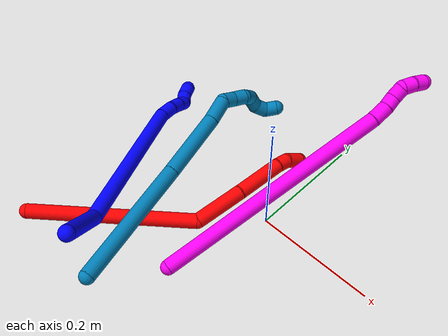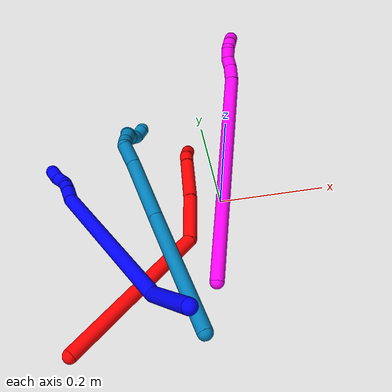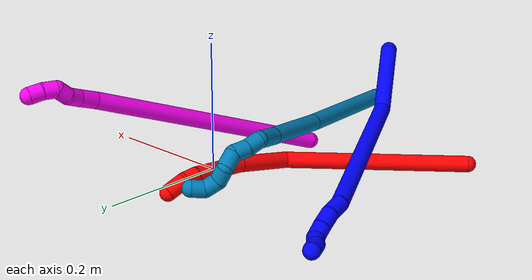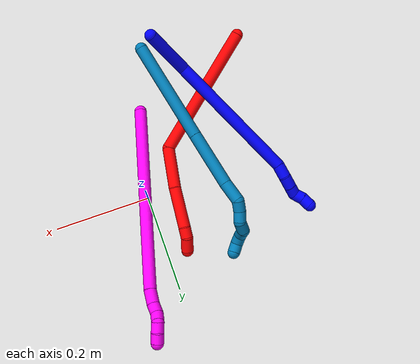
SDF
<sdf version="1.7">
 <world name="default">
  <model name="1">
   <static>0</static>
   <link name="1">
    <collision name="collision-cylinder-e_1_1_4">
     <pose>0.001584 -0.016772 -0.051891 2.82898 0.029044 0.183791</pose>
     <geometry><cylinder><radius>0.0125</radius><length>0.109115</length></cylinder></geometry>
     <surface>
      <friction><ode><mu>1.16</mu><mu2>1.16</mu2><slip1>0</slip1><slip2>0</slip2></ode></friction>
      <contact><ode><kp>1e+06</kp><kd>1</kd><max_vel>0</max_vel><min_depth>0.001</min_depth></ode></contact>
     </surface>
    </collision>
    <visual name="visual-cylinder-e_1_1_4">
     <pose>0.001584 -0.016772 -0.051891 2.82898 0.029044 0.183791</pose>
     <geometry><cylinder><radius>0.0125</radius><length>0.109115</length></cylinder></geometry>
     <material><ambient>0 0 1 1</ambient></material>
    </visual>
    <collision name="collision-cylinder-e_2_4_5">
     <pose>-0.013716 -0.001161 -0.237657 -2.90426 -0.12198 0.946687</pose>
     <geometry><cylinder><radius>0.0125</radius><length>0.277533</length></cylinder></geometry>
     <surface>
      <friction><ode><mu>1.16</mu><mu2>1.16</mu2><slip1>0</slip1><slip2>0</slip2></ode></friction>
      <contact><ode><kp>1e+06</kp><kd>1</kd><max_vel>0</max_vel><min_depth>0.001</min_depth></ode></contact>
     </surface>
    </collision>
    <visual name="visual-cylinder-e_2_4_5">
     <pose>-0.013716 -0.001161 -0.237657 -2.90426 -0.12198 0.946687</pose>
     <geometry><cylinder><radius>0.0125</radius><length>0.277533</length></cylinder></geometry>
     <material><ambient>0 0 1 1</ambient></material>
    </visual>
    <collision name="collision-cylinder-e_3_5_6">
     <pose>-0.028817 0.035622 -0.38454 -2.81548 0.129185 -0.749207</pose>
     <geometry><cylinder><radius>0.0125</radius><length>0.027695</length></cylinder></geometry>
     <surface>
      <friction><ode><mu>1.16</mu><mu2>1.16</mu2><slip1>0</slip1><slip2>0</slip2></ode></friction>
      <contact><ode><kp>1e+06</kp><kd>1</kd><max_vel>0</max_vel><min_depth>0.001</min_depth></ode></contact>
     </surface>
    </collision>
    <visual name="visual-cylinder-e_3_5_6">
     <pose>-0.028817 0.035622 -0.38454 -2.81548 0.129185 -0.749207</pose>
     <geometry><cylinder><radius>0.0125</radius><length>0.027695</length></cylinder></geometry>
     <material><ambient>0 0 1 1</ambient></material>
    </visual>
    <collision name="collision-cylinder-e_4_6_7">
     <pose>-0.024769 0.041117 -0.409801 -3.05242 0.181993 -2.23205</pose>
     <geometry><cylinder><radius>0.0125</radius><length>0.025016</length></cylinder></geometry>
     <surface>
      <friction><ode><mu>1.16</mu><mu2>1.16</mu2><slip1>0</slip1><slip2>0</slip2></ode></friction>
      <contact><ode><kp>1e+06</kp><kd>1</kd><max_vel>0</max_vel><min_depth>0.001</min_depth></ode></contact>
     </surface>
    </collision>
    <visual name="visual-cylinder-e_4_6_7">
     <pose>-0.024769 0.041117 -0.409801 -3.05242 0.181993 -2.23205</pose>
     <geometry><cylinder><radius>0.0125</radius><length>0.025016</length></cylinder></geometry>
     <material><ambient>0 0 1 1</ambient></material>
    </visual>
    <collision name="collision-cylinder-e_5_7_8">
     <pose>-0.020491 0.042107 -0.431983 3.13104 0.200114 3.03654</pose>
     <geometry><cylinder><radius>0.0125</radius><length>0.020264</length></cylinder></geometry>
     <surface>
      <friction><ode><mu>1.16</mu><mu2>1.16</mu2><slip1>0</slip1><slip2>0</slip2></ode></friction>
      <contact><ode><kp>1e+06</kp><kd>1</kd><max_vel>0</max_vel><min_depth>0.001</min_depth></ode></contact>
     </surface>
    </collision>
    <visual name="visual-cylinder-e_5_7_8">
     <pose>-0.020491 0.042107 -0.431983 3.13104 0.200114 3.03654</pose>
     <geometry><cylinder><radius>0.0125</radius><length>0.020264</length></cylinder></geometry>
     <material><ambient>0 0 1 1</ambient></material>
    </visual>
    <collision name="collision-cylinder-e_6_8_9">
     <pose>-0.022906 0.044431 -0.450637 -2.87008 -0.45483 2.07513</pose>
     <geometry><cylinder><radius>0.0125</radius><length>0.020163</length></cylinder></geometry>
     <surface>
      <friction><ode><mu>1.16</mu><mu2>1.16</mu2><slip1>0</slip1><slip2>0</slip2></ode></friction>
      <contact><ode><kp>1e+06</kp><kd>1</kd><max_vel>0</max_vel><min_depth>0.001</min_depth></ode></contact>
     </surface>
    </collision>
    <visual name="visual-cylinder-e_6_8_9">
     <pose>-0.022906 0.044431 -0.450637 -2.87008 -0.45483 2.07513</pose>
     <geometry><cylinder><radius>0.0125</radius><length>0.020163</length></cylinder></geometry>
     <material><ambient>0 0 1 1</ambient></material>
    </visual>
    <collision name="collision-cylinder-e_7_9_2">
     <pose>-0.029291 0.051039 -0.468354 -2.70658 -0.194723 0.832271</pose>
     <geometry><cylinder><radius>0.0125</radius><length>0.020214</length></cylinder></geometry>
     <surface>
      <friction><ode><mu>1.16</mu><mu2>1.16</mu2><slip1>0</slip1><slip2>0</slip2></ode></friction>
      <contact><ode><kp>1e+06</kp><kd>1</kd><max_vel>0</max_vel><min_depth>0.001</min_depth></ode></contact>
     </surface>
    </collision>
    <visual name="visual-cylinder-e_7_9_2">
     <pose>-0.029291 0.051039 -0.468354 -2.70658 -0.194723 0.832271</pose>
     <geometry><cylinder><radius>0.0125</radius><length>0.020214</length></cylinder></geometry>
     <material><ambient>0 0 1 1</ambient></material>
    </visual>
    <collision name="collision-sphere-2">
     <pose>-0.031247 0.055218 -0.477347 0 -0 0</pose>
     <geometry><sphere><radius>0.0125</radius></sphere></geometry>
     <surface>
      <friction><ode><mu>1.16</mu><mu2>1.16</mu2><slip1>0</slip1><slip2>0</slip2></ode></friction>
      <contact><ode><kp>1e+06</kp><kd>1</kd><max_vel>0</max_vel><min_depth>0.001</min_depth></ode></contact>
     </surface>
    </collision>
    <visual name="visual-sphere-2">
     <pose>-0.031247 0.055218 -0.477347 0 -0 0</pose>
     <geometry><sphere><radius>0.0125</radius></sphere></geometry>
     <material><ambient>0 0 1 1</ambient></material>
    </visual>
    <collision name="collision-sphere-9">
     <pose>-0.027335 0.04686 -0.459362 0 -0 0</pose>
     <geometry><sphere><radius>0.0125</radius></sphere></geometry>
     <surface>
      <friction><ode><mu>1.16</mu><mu2>1.16</mu2><slip1>0</slip1><slip2>0</slip2></ode></friction>
      <contact><ode><kp>1e+06</kp><kd>1</kd><max_vel>0</max_vel><min_depth>0.001</min_depth></ode></contact>
     </surface>
    </collision>
    <visual name="visual-sphere-9">
     <pose>-0.027335 0.04686 -0.459362 0 -0 0</pose>
     <geometry><sphere><radius>0.0125</radius></sphere></geometry>
     <material><ambient>0 0 1 1</ambient></material>
    </visual>
    <collision name="collision-sphere-4">
     <pose>0.003169 -0.033544 -0.103783 0 -0 0</pose>
     <geometry><sphere><radius>0.0125</radius></sphere></geometry>
     <surface>
      <friction><ode><mu>1.16</mu><mu2>1.16</mu2><slip1>0</slip1><slip2>0</slip2></ode></friction>
      <contact><ode><kp>1e+06</kp><kd>1</kd><max_vel>0</max_vel><min_depth>0.001</min_depth></ode></contact>
     </surface>
    </collision>
    <visual name="visual-sphere-4">
     <pose>0.003169 -0.033544 -0.103783 0 -0 0</pose>
     <geometry><sphere><radius>0.0125</radius></sphere></geometry>
     <material><ambient>0 0 1 1</ambient></material>
    </visual>
    <collision name="collision-sphere-1">
     <geometry><sphere><radius>0.0125</radius></sphere></geometry>
     <surface>
      <friction><ode><mu>1.16</mu><mu2>1.16</mu2><slip1>0</slip1><slip2>0</slip2></ode></friction>
      <contact><ode><kp>1e+06</kp><kd>1</kd><max_vel>0</max_vel><min_depth>0.001</min_depth></ode></contact>
     </surface>
    </collision>
    <visual name="visual-sphere-1">
     <geometry><sphere><radius>0.0125</radius></sphere></geometry>
     <material><ambient>0 0 1 1</ambient></material>
    </visual>
    <collision name="collision-sphere-8">
     <pose>-0.018477 0.042002 -0.441912 0 -0 0</pose>
     <geometry><sphere><radius>0.0125</radius></sphere></geometry>
     <surface>
      <friction><ode><mu>1.16</mu><mu2>1.16</mu2><slip1>0</slip1><slip2>0</slip2></ode></friction>
      <contact><ode><kp>1e+06</kp><kd>1</kd><max_vel>0</max_vel><min_depth>0.001</min_depth></ode></contact>
     </surface>
    </collision>
    <visual name="visual-sphere-8">
     <pose>-0.018477 0.042002 -0.441912 0 -0 0</pose>
     <geometry><sphere><radius>0.0125</radius></sphere></geometry>
     <material><ambient>0 0 1 1</ambient></material>
    </visual>
    <collision name="collision-sphere-5">
     <pose>-0.030601 0.031223 -0.371532 0 -0 0</pose>
     <geometry><sphere><radius>0.0125</radius></sphere></geometry>
     <surface>
      <friction><ode><mu>1.16</mu><mu2>1.16</mu2><slip1>0</slip1><slip2>0</slip2></ode></friction>
      <contact><ode><kp>1e+06</kp><kd>1</kd><max_vel>0</max_vel><min_depth>0.001</min_depth></ode></contact>
     </surface>
    </collision>
    <visual name="visual-sphere-5">
     <pose>-0.030601 0.031223 -0.371532 0 -0 0</pose>
     <geometry><sphere><radius>0.0125</radius></sphere></geometry>
     <material><ambient>0 0 1 1</ambient></material>
    </visual>
    <collision name="collision-sphere-6">
     <pose>-0.027033 0.040021 -0.397548 0 -0 0</pose>
     <geometry><sphere><radius>0.0125</radius></sphere></geometry>
     <surface>
      <friction><ode><mu>1.16</mu><mu2>1.16</mu2><slip1>0</slip1><slip2>0</slip2></ode></friction>
      <contact><ode><kp>1e+06</kp><kd>1</kd><max_vel>0</max_vel><min_depth>0.001</min_depth></ode></contact>
     </surface>
    </collision>
    <visual name="visual-sphere-6">
     <pose>-0.027033 0.040021 -0.397548 0 -0 0</pose>
     <geometry><sphere><radius>0.0125</radius></sphere></geometry>
     <material><ambient>0 0 1 1</ambient></material>
    </visual>
    <collision name="collision-sphere-7">
     <pose>-0.022505 0.042212 -0.422054 0 -0 0</pose>
     <geometry><sphere><radius>0.0125</radius></sphere></geometry>
     <surface>
      <friction><ode><mu>1.16</mu><mu2>1.16</mu2><slip1>0</slip1><slip2>0</slip2></ode></friction>
      <contact><ode><kp>1e+06</kp><kd>1</kd><max_vel>0</max_vel><min_depth>0.001</min_depth></ode></contact>
     </surface>
    </collision>
    <visual name="visual-sphere-7">
     <pose>-0.022505 0.042212 -0.422054 0 -0 0</pose>
     <geometry><sphere><radius>0.0125</radius></sphere></geometry>
     <material><ambient>0 0 1 1</ambient></material>
    </visual>
    <inertial>
     <pose>-0.013041 0.005288 -0.239657 0 -0 0</pose>
     <mass>0.5</mass>
     <inertia>
      <ixx>0.00261</ixx>
      <ixy>0</ixy>
      <ixz>0</ixz>
      <iyy>0.000387</iyy>
      <iyz>0</iyz>
      <izz>-0.000208</izz>
     </inertia>
    </inertial>
   </link>
   <pose>-0.108408 -0.288502 0.152193 1.10258 0.363868 0.263491</pose>
  </model>
  <model name="2">
   <static>0</static>
   <link name="2">
    <collision name="collision-cylinder-e_1_1_4">
     <pose>0.007608 0.120166 -0.070526 -2.10153 0.054549 -0.095216</pose>
     <geometry><cylinder><radius>0.0125</radius><length>0.279081</length></cylinder></geometry>
     <surface>
      <friction><ode><mu>1.16</mu><mu2>1.16</mu2><slip1>0</slip1><slip2>0</slip2></ode></friction>
      <contact><ode><kp>1e+06</kp><kd>1</kd><max_vel>0</max_vel><min_depth>0.001</min_depth></ode></contact>
     </surface>
    </collision>
    <visual name="visual-cylinder-e_1_1_4">
     <pose>0.007608 0.120166 -0.070526 -2.10153 0.054549 -0.095216</pose>
     <geometry><cylinder><radius>0.0125</radius><length>0.279081</length></cylinder></geometry>
     <material><ambient>1 0 0 1</ambient></material>
    </visual>
    <collision name="collision-cylinder-e_2_4_5">
     <pose>0.039938 0.259195 -0.170825 -2.57684 0.611681 -1.65532</pose>
     <geometry><cylinder><radius>0.0125</radius><length>0.086104</length></cylinder></geometry>
     <surface>
      <friction><ode><mu>1.16</mu><mu2>1.16</mu2><slip1>0</slip1><slip2>0</slip2></ode></friction>
      <contact><ode><kp>1e+06</kp><kd>1</kd><max_vel>0</max_vel><min_depth>0.001</min_depth></ode></contact>
     </surface>
    </collision>
    <visual name="visual-cylinder-e_2_4_5">
     <pose>0.039938 0.259195 -0.170825 -2.57684 0.611681 -1.65532</pose>
     <geometry><cylinder><radius>0.0125</radius><length>0.086104</length></cylinder></geometry>
     <material><ambient>1 0 0 1</ambient></material>
    </visual>
    <collision name="collision-cylinder-e_3_5_6">
     <pose>0.092572 0.295938 -0.22599 -2.52811 0.732134 -1.76052</pose>
     <geometry><cylinder><radius>0.0125</radius><length>0.08351</length></cylinder></geometry>
     <surface>
      <friction><ode><mu>1.16</mu><mu2>1.16</mu2><slip1>0</slip1><slip2>0</slip2></ode></friction>
      <contact><ode><kp>1e+06</kp><kd>1</kd><max_vel>0</max_vel><min_depth>0.001</min_depth></ode></contact>
     </surface>
    </collision>
    <visual name="visual-cylinder-e_3_5_6">
     <pose>0.092572 0.295938 -0.22599 -2.52811 0.732134 -1.76052</pose>
     <geometry><cylinder><radius>0.0125</radius><length>0.08351</length></cylinder></geometry>
     <material><ambient>1 0 0 1</ambient></material>
    </visual>
    <collision name="collision-cylinder-e_4_6_7">
     <pose>0.128458 0.319397 -0.256233 -2.28635 0.823183 -1.52773</pose>
     <geometry><cylinder><radius>0.0125</radius><length>0.021748</length></cylinder></geometry>
     <surface>
      <friction><ode><mu>1.16</mu><mu2>1.16</mu2><slip1>0</slip1><slip2>0</slip2></ode></friction>
      <contact><ode><kp>1e+06</kp><kd>1</kd><max_vel>0</max_vel><min_depth>0.001</min_depth></ode></contact>
     </surface>
    </collision>
    <visual name="visual-cylinder-e_4_6_7">
     <pose>0.128458 0.319397 -0.256233 -2.28635 0.823183 -1.52773</pose>
     <geometry><cylinder><radius>0.0125</radius><length>0.021748</length></cylinder></geometry>
     <material><ambient>1 0 0 1</ambient></material>
    </visual>
    <collision name="collision-cylinder-e_5_7_2">
     <pose>0.146278 0.335784 -0.263241 -1.76793 0.729197 -0.871221</pose>
     <geometry><cylinder><radius>0.0125</radius><length>0.029557</length></cylinder></geometry>
     <surface>
      <friction><ode><mu>1.16</mu><mu2>1.16</mu2><slip1>0</slip1><slip2>0</slip2></ode></friction>
      <contact><ode><kp>1e+06</kp><kd>1</kd><max_vel>0</max_vel><min_depth>0.001</min_depth></ode></contact>
     </surface>
    </collision>
    <visual name="visual-cylinder-e_5_7_2">
     <pose>0.146278 0.335784 -0.263241 -1.76793 0.729197 -0.871221</pose>
     <geometry><cylinder><radius>0.0125</radius><length>0.029557</length></cylinder></geometry>
     <material><ambient>1 0 0 1</ambient></material>
    </visual>
    <collision name="collision-sphere-2">
     <pose>0.156125 0.346591 -0.2654 0 -0 0</pose>
     <geometry><sphere><radius>0.0125</radius></sphere></geometry>
     <surface>
      <friction><ode><mu>1.16</mu><mu2>1.16</mu2><slip1>0</slip1><slip2>0</slip2></ode></friction>
      <contact><ode><kp>1e+06</kp><kd>1</kd><max_vel>0</max_vel><min_depth>0.001</min_depth></ode></contact>
     </surface>
    </collision>
    <visual name="visual-sphere-2">
     <pose>0.156125 0.346591 -0.2654 0 -0 0</pose>
     <geometry><sphere><radius>0.0125</radius></sphere></geometry>
     <material><ambient>1 0 0 1</ambient></material>
    </visual>
    <collision name="collision-sphere-7">
     <pose>0.136432 0.324977 -0.261083 0 -0 0</pose>
     <geometry><sphere><radius>0.0125</radius></sphere></geometry>
     <surface>
      <friction><ode><mu>1.16</mu><mu2>1.16</mu2><slip1>0</slip1><slip2>0</slip2></ode></friction>
      <contact><ode><kp>1e+06</kp><kd>1</kd><max_vel>0</max_vel><min_depth>0.001</min_depth></ode></contact>
     </surface>
    </collision>
    <visual name="visual-sphere-7">
     <pose>0.136432 0.324977 -0.261083 0 -0 0</pose>
     <geometry><sphere><radius>0.0125</radius></sphere></geometry>
     <material><ambient>1 0 0 1</ambient></material>
    </visual>
    <collision name="collision-sphere-6">
     <pose>0.120484 0.313817 -0.251382 0 -0 0</pose>
     <geometry><sphere><radius>0.0125</radius></sphere></geometry>
     <surface>
      <friction><ode><mu>1.16</mu><mu2>1.16</mu2><slip1>0</slip1><slip2>0</slip2></ode></friction>
      <contact><ode><kp>1e+06</kp><kd>1</kd><max_vel>0</max_vel><min_depth>0.001</min_depth></ode></contact>
     </surface>
    </collision>
    <visual name="visual-sphere-6">
     <pose>0.120484 0.313817 -0.251382 0 -0 0</pose>
     <geometry><sphere><radius>0.0125</radius></sphere></geometry>
     <material><ambient>1 0 0 1</ambient></material>
    </visual>
    <collision name="collision-sphere-5">
     <pose>0.064661 0.278059 -0.200598 0 -0 0</pose>
     <geometry><sphere><radius>0.0125</radius></sphere></geometry>
     <surface>
      <friction><ode><mu>1.16</mu><mu2>1.16</mu2><slip1>0</slip1><slip2>0</slip2></ode></friction>
      <contact><ode><kp>1e+06</kp><kd>1</kd><max_vel>0</max_vel><min_depth>0.001</min_depth></ode></contact>
     </surface>
    </collision>
    <visual name="visual-sphere-5">
     <pose>0.064661 0.278059 -0.200598 0 -0 0</pose>
     <geometry><sphere><radius>0.0125</radius></sphere></geometry>
     <material><ambient>1 0 0 1</ambient></material>
    </visual>
    <collision name="collision-sphere-1">
     <geometry><sphere><radius>0.0125</radius></sphere></geometry>
     <surface>
      <friction><ode><mu>1.16</mu><mu2>1.16</mu2><slip1>0</slip1><slip2>0</slip2></ode></friction>
      <contact><ode><kp>1e+06</kp><kd>1</kd><max_vel>0</max_vel><min_depth>0.001</min_depth></ode></contact>
     </surface>
    </collision>
    <visual name="visual-sphere-1">
     <geometry><sphere><radius>0.0125</radius></sphere></geometry>
     <material><ambient>1 0 0 1</ambient></material>
    </visual>
    <collision name="collision-sphere-4">
     <pose>0.015216 0.240331 -0.141051 0 -0 0</pose>
     <geometry><sphere><radius>0.0125</radius></sphere></geometry>
     <surface>
      <friction><ode><mu>1.16</mu><mu2>1.16</mu2><slip1>0</slip1><slip2>0</slip2></ode></friction>
      <contact><ode><kp>1e+06</kp><kd>1</kd><max_vel>0</max_vel><min_depth>0.001</min_depth></ode></contact>
     </surface>
    </collision>
    <visual name="visual-sphere-4">
     <pose>0.015216 0.240331 -0.141051 0 -0 0</pose>
     <geometry><sphere><radius>0.0125</radius></sphere></geometry>
     <material><ambient>1 0 0 1</ambient></material>
    </visual>
    <inertial>
     <pose>0.04082 0.194877 -0.133233 0 -0 0</pose>
     <mass>0.5</mass>
     <inertia>
      <ixx>0.001554</ixx>
      <ixy>0</ixy>
      <ixz>0</ixz>
      <iyy>-0.001092</iyy>
      <iyz>0</iyz>
      <izz>-0.00181</izz>
     </inertia>
    </inertial>
   </link>
   <pose>-0.286566 -0.263479 0.011496 -2.63288 0.38366 2.21113</pose>
  </model>
  <model name="9">
   <static>0</static>
   <link name="9">
    <collision name="collision-cylinder-e_1_1_4">
     <pose>-0.02886 0.09094 -0.046139 -2.04031 -0.275794 0.444583</pose>
     <geometry><cylinder><radius>0.0125</radius><length>0.211961</length></cylinder></geometry>
     <surface>
      <friction><ode><mu>1.16</mu><mu2>1.16</mu2><slip1>0</slip1><slip2>0</slip2></ode></friction>
      <contact><ode><kp>1e+06</kp><kd>1</kd><max_vel>0</max_vel><min_depth>0.001</min_depth></ode></contact>
     </surface>
    </collision>
    <visual name="visual-cylinder-e_1_1_4">
     <pose>-0.02886 0.09094 -0.046139 -2.04031 -0.275794 0.444583</pose>
     <geometry><cylinder><radius>0.0125</radius><length>0.211961</length></cylinder></geometry>
     <material><ambient>0 0.490196 0.709804 1</ambient></material>
    </visual>
    <collision name="collision-cylinder-e_2_4_5">
     <pose>-0.072946 0.232649 -0.115482 -1.9995 -0.266299 0.411087</pose>
     <geometry><cylinder><radius>0.0125</radius><length>0.115718</length></cylinder></geometry>
     <surface>
      <friction><ode><mu>1.16</mu><mu2>1.16</mu2><slip1>0</slip1><slip2>0</slip2></ode></friction>
      <contact><ode><kp>1e+06</kp><kd>1</kd><max_vel>0</max_vel><min_depth>0.001</min_depth></ode></contact>
     </surface>
    </collision>
    <visual name="visual-cylinder-e_2_4_5">
     <pose>-0.072946 0.232649 -0.115482 -1.9995 -0.266299 0.411087</pose>
     <geometry><cylinder><radius>0.0125</radius><length>0.115718</length></cylinder></geometry>
     <material><ambient>0 0.490196 0.709804 1</ambient></material>
    </visual>
    <collision name="collision-cylinder-e_3_5_6">
     <pose>-0.094672 0.302528 -0.145435 -1.91029 -0.310358 0.435301</pose>
     <geometry><cylinder><radius>0.0125</radius><length>0.04257</length></cylinder></geometry>
     <surface>
      <friction><ode><mu>1.16</mu><mu2>1.16</mu2><slip1>0</slip1><slip2>0</slip2></ode></friction>
      <contact><ode><kp>1e+06</kp><kd>1</kd><max_vel>0</max_vel><min_depth>0.001</min_depth></ode></contact>
     </surface>
    </collision>
    <visual name="visual-cylinder-e_3_5_6">
     <pose>-0.094672 0.302528 -0.145435 -1.91029 -0.310358 0.435301</pose>
     <geometry><cylinder><radius>0.0125</radius><length>0.04257</length></cylinder></geometry>
     <material><ambient>0 0.490196 0.709804 1</ambient></material>
    </visual>
    <collision name="collision-cylinder-e_4_6_7">
     <pose>-0.101332 0.32774 -0.16135 -2.55434 -0.014501 0.04795</pose>
     <geometry><cylinder><radius>0.0125</radius><length>0.022023</length></cylinder></geometry>
     <surface>
      <friction><ode><mu>1.16</mu><mu2>1.16</mu2><slip1>0</slip1><slip2>0</slip2></ode></friction>
      <contact><ode><kp>1e+06</kp><kd>1</kd><max_vel>0</max_vel><min_depth>0.001</min_depth></ode></contact>
     </surface>
    </collision>
    <visual name="visual-cylinder-e_4_6_7">
     <pose>-0.101332 0.32774 -0.16135 -2.55434 -0.014501 0.04795</pose>
     <geometry><cylinder><radius>0.0125</radius><length>0.022023</length></cylinder></geometry>
     <material><ambient>0 0.490196 0.709804 1</ambient></material>
    </visual>
    <collision name="collision-cylinder-e_5_7_8">
     <pose>-0.09966 0.340987 -0.178638 -2.42004 0.167779 -0.438572</pose>
     <geometry><cylinder><radius>0.0125</radius><length>0.021946</length></cylinder></geometry>
     <surface>
      <friction><ode><mu>1.16</mu><mu2>1.16</mu2><slip1>0</slip1><slip2>0</slip2></ode></friction>
      <contact><ode><kp>1e+06</kp><kd>1</kd><max_vel>0</max_vel><min_depth>0.001</min_depth></ode></contact>
     </surface>
    </collision>
    <visual name="visual-cylinder-e_5_7_8">
     <pose>-0.09966 0.340987 -0.178638 -2.42004 0.167779 -0.438572</pose>
     <geometry><cylinder><radius>0.0125</radius><length>0.021946</length></cylinder></geometry>
     <material><ambient>0 0.490196 0.709804 1</ambient></material>
    </visual>
    <collision name="collision-cylinder-e_6_8_9">
     <pose>-0.10128 0.351034 -0.197928 -2.88745 -0.290744 1.7066</pose>
     <geometry><cylinder><radius>0.0125</radius><length>0.024086</length></cylinder></geometry>
     <surface>
      <friction><ode><mu>1.16</mu><mu2>1.16</mu2><slip1>0</slip1><slip2>0</slip2></ode></friction>
      <contact><ode><kp>1e+06</kp><kd>1</kd><max_vel>0</max_vel><min_depth>0.001</min_depth></ode></contact>
     </surface>
    </collision>
    <visual name="visual-cylinder-e_6_8_9">
     <pose>-0.10128 0.351034 -0.197928 -2.88745 -0.290744 1.7066</pose>
     <geometry><cylinder><radius>0.0125</radius><length>0.024086</length></cylinder></geometry>
     <material><ambient>0 0.490196 0.709804 1</ambient></material>
    </visual>
    <collision name="collision-cylinder-e_7_9_10">
     <pose>-0.10342 0.350924 -0.218928 2.84446 0.126902 0.802916</pose>
     <geometry><cylinder><radius>0.0125</radius><length>0.020734</length></cylinder></geometry>
     <surface>
      <friction><ode><mu>1.16</mu><mu2>1.16</mu2><slip1>0</slip1><slip2>0</slip2></ode></friction>
      <contact><ode><kp>1e+06</kp><kd>1</kd><max_vel>0</max_vel><min_depth>0.001</min_depth></ode></contact>
     </surface>
    </collision>
    <visual name="visual-cylinder-e_7_9_10">
     <pose>-0.10342 0.350924 -0.218928 2.84446 0.126902 0.802916</pose>
     <geometry><cylinder><radius>0.0125</radius><length>0.020734</length></cylinder></geometry>
     <material><ambient>0 0.490196 0.709804 1</ambient></material>
    </visual>
    <collision name="collision-cylinder-e_8_10_11">
     <pose>-0.098294 0.349988 -0.238294 -2.92731 0.372621 -2.10458</pose>
     <geometry><cylinder><radius>0.0125</radius><length>0.020951</length></cylinder></geometry>
     <surface>
      <friction><ode><mu>1.16</mu><mu2>1.16</mu2><slip1>0</slip1><slip2>0</slip2></ode></friction>
      <contact><ode><kp>1e+06</kp><kd>1</kd><max_vel>0</max_vel><min_depth>0.001</min_depth></ode></contact>
     </surface>
    </collision>
    <visual name="visual-cylinder-e_8_10_11">
     <pose>-0.098294 0.349988 -0.238294 -2.92731 0.372621 -2.10458</pose>
     <geometry><cylinder><radius>0.0125</radius><length>0.020951</length></cylinder></geometry>
     <material><ambient>0 0.490196 0.709804 1</ambient></material>
    </visual>
    <collision name="collision-cylinder-e_9_11_2">
     <pose>-0.089091 0.358816 -0.252875 -2.21257 0.568811 -1.05624</pose>
     <geometry><cylinder><radius>0.0125</radius><length>0.020011</length></cylinder></geometry>
     <surface>
      <friction><ode><mu>1.16</mu><mu2>1.16</mu2><slip1>0</slip1><slip2>0</slip2></ode></friction>
      <contact><ode><kp>1e+06</kp><kd>1</kd><max_vel>0</max_vel><min_depth>0.001</min_depth></ode></contact>
     </surface>
    </collision>
    <visual name="visual-cylinder-e_9_11_2">
     <pose>-0.089091 0.358816 -0.252875 -2.21257 0.568811 -1.05624</pose>
     <geometry><cylinder><radius>0.0125</radius><length>0.020011</length></cylinder></geometry>
     <material><ambient>0 0.490196 0.709804 1</ambient></material>
    </visual>
    <collision name="collision-sphere-2">
     <pose>-0.083702 0.365569 -0.257921 0 -0 0</pose>
     <geometry><sphere><radius>0.0125</radius></sphere></geometry>
     <surface>
      <friction><ode><mu>1.16</mu><mu2>1.16</mu2><slip1>0</slip1><slip2>0</slip2></ode></friction>
      <contact><ode><kp>1e+06</kp><kd>1</kd><max_vel>0</max_vel><min_depth>0.001</min_depth></ode></contact>
     </surface>
    </collision>
    <visual name="visual-sphere-2">
     <pose>-0.083702 0.365569 -0.257921 0 -0 0</pose>
     <geometry><sphere><radius>0.0125</radius></sphere></geometry>
     <material><ambient>0 0.490196 0.709804 1</ambient></material>
    </visual>
    <collision name="collision-sphere-11">
     <pose>-0.09448 0.352063 -0.247828 0 -0 0</pose>
     <geometry><sphere><radius>0.0125</radius></sphere></geometry>
     <surface>
      <friction><ode><mu>1.16</mu><mu2>1.16</mu2><slip1>0</slip1><slip2>0</slip2></ode></friction>
      <contact><ode><kp>1e+06</kp><kd>1</kd><max_vel>0</max_vel><min_depth>0.001</min_depth></ode></contact>
     </surface>
    </collision>
    <visual name="visual-sphere-11">
     <pose>-0.09448 0.352063 -0.247828 0 -0 0</pose>
     <geometry><sphere><radius>0.0125</radius></sphere></geometry>
     <material><ambient>0 0.490196 0.709804 1</ambient></material>
    </visual>
    <collision name="collision-sphere-10">
     <pose>-0.102108 0.347913 -0.228761 0 -0 0</pose>
     <geometry><sphere><radius>0.0125</radius></sphere></geometry>
     <surface>
      <friction><ode><mu>1.16</mu><mu2>1.16</mu2><slip1>0</slip1><slip2>0</slip2></ode></friction>
      <contact><ode><kp>1e+06</kp><kd>1</kd><max_vel>0</max_vel><min_depth>0.001</min_depth></ode></contact>
     </surface>
    </collision>
    <visual name="visual-sphere-10">
     <pose>-0.102108 0.347913 -0.228761 0 -0 0</pose>
     <geometry><sphere><radius>0.0125</radius></sphere></geometry>
     <material><ambient>0 0.490196 0.709804 1</ambient></material>
    </visual>
    <collision name="collision-sphere-9">
     <pose>-0.104732 0.353935 -0.209095 0 -0 0</pose>
     <geometry><sphere><radius>0.0125</radius></sphere></geometry>
     <surface>
      <friction><ode><mu>1.16</mu><mu2>1.16</mu2><slip1>0</slip1><slip2>0</slip2></ode></friction>
      <contact><ode><kp>1e+06</kp><kd>1</kd><max_vel>0</max_vel><min_depth>0.001</min_depth></ode></contact>
     </surface>
    </collision>
    <visual name="visual-sphere-9">
     <pose>-0.104732 0.353935 -0.209095 0 -0 0</pose>
     <geometry><sphere><radius>0.0125</radius></sphere></geometry>
     <material><ambient>0 0.490196 0.709804 1</ambient></material>
    </visual>
    <collision name="collision-sphere-4">
     <pose>-0.057719 0.181881 -0.092278 0 -0 0</pose>
     <geometry><sphere><radius>0.0125</radius></sphere></geometry>
     <surface>
      <friction><ode><mu>1.16</mu><mu2>1.16</mu2><slip1>0</slip1><slip2>0</slip2></ode></friction>
      <contact><ode><kp>1e+06</kp><kd>1</kd><max_vel>0</max_vel><min_depth>0.001</min_depth></ode></contact>
     </surface>
    </collision>
    <visual name="visual-sphere-4">
     <pose>-0.057719 0.181881 -0.092278 0 -0 0</pose>
     <geometry><sphere><radius>0.0125</radius></sphere></geometry>
     <material><ambient>0 0.490196 0.709804 1</ambient></material>
    </visual>
    <collision name="collision-sphere-1">
     <geometry><sphere><radius>0.0125</radius></sphere></geometry>
     <surface>
      <friction><ode><mu>1.16</mu><mu2>1.16</mu2><slip1>0</slip1><slip2>0</slip2></ode></friction>
      <contact><ode><kp>1e+06</kp><kd>1</kd><max_vel>0</max_vel><min_depth>0.001</min_depth></ode></contact>
     </surface>
    </collision>
    <visual name="visual-sphere-1">
     <geometry><sphere><radius>0.0125</radius></sphere></geometry>
     <material><ambient>0 0.490196 0.709804 1</ambient></material>
    </visual>
    <collision name="collision-sphere-8">
     <pose>-0.097827 0.348133 -0.186761 0 -0 0</pose>
     <geometry><sphere><radius>0.0125</radius></sphere></geometry>
     <surface>
      <friction><ode><mu>1.16</mu><mu2>1.16</mu2><slip1>0</slip1><slip2>0</slip2></ode></friction>
      <contact><ode><kp>1e+06</kp><kd>1</kd><max_vel>0</max_vel><min_depth>0.001</min_depth></ode></contact>
     </surface>
    </collision>
    <visual name="visual-sphere-8">
     <pose>-0.097827 0.348133 -0.186761 0 -0 0</pose>
     <geometry><sphere><radius>0.0125</radius></sphere></geometry>
     <material><ambient>0 0.490196 0.709804 1</ambient></material>
    </visual>
    <collision name="collision-sphere-5">
     <pose>-0.088172 0.283417 -0.138686 0 -0 0</pose>
     <geometry><sphere><radius>0.0125</radius></sphere></geometry>
     <surface>
      <friction><ode><mu>1.16</mu><mu2>1.16</mu2><slip1>0</slip1><slip2>0</slip2></ode></friction>
      <contact><ode><kp>1e+06</kp><kd>1</kd><max_vel>0</max_vel><min_depth>0.001</min_depth></ode></contact>
     </surface>
    </collision>
    <visual name="visual-sphere-5">
     <pose>-0.088172 0.283417 -0.138686 0 -0 0</pose>
     <geometry><sphere><radius>0.0125</radius></sphere></geometry>
     <material><ambient>0 0.490196 0.709804 1</ambient></material>
    </visual>
    <collision name="collision-sphere-6">
     <pose>-0.101173 0.32164 -0.152185 0 -0 0</pose>
     <geometry><sphere><radius>0.0125</radius></sphere></geometry>
     <surface>
      <friction><ode><mu>1.16</mu><mu2>1.16</mu2><slip1>0</slip1><slip2>0</slip2></ode></friction>
      <contact><ode><kp>1e+06</kp><kd>1</kd><max_vel>0</max_vel><min_depth>0.001</min_depth></ode></contact>
     </surface>
    </collision>
    <visual name="visual-sphere-6">
     <pose>-0.101173 0.32164 -0.152185 0 -0 0</pose>
     <geometry><sphere><radius>0.0125</radius></sphere></geometry>
     <material><ambient>0 0.490196 0.709804 1</ambient></material>
    </visual>
    <collision name="collision-sphere-7">
     <pose>-0.101492 0.33384 -0.170516 0 -0 0</pose>
     <geometry><sphere><radius>0.0125</radius></sphere></geometry>
     <surface>
      <friction><ode><mu>1.16</mu><mu2>1.16</mu2><slip1>0</slip1><slip2>0</slip2></ode></friction>
      <contact><ode><kp>1e+06</kp><kd>1</kd><max_vel>0</max_vel><min_depth>0.001</min_depth></ode></contact>
     </surface>
    </collision>
    <visual name="visual-sphere-7">
     <pose>-0.101492 0.33384 -0.170516 0 -0 0</pose>
     <geometry><sphere><radius>0.0125</radius></sphere></geometry>
     <material><ambient>0 0.490196 0.709804 1</ambient></material>
    </visual>
    <inertial>
     <pose>-0.062866 0.208042 -0.112335 0 -0 0</pose>
     <mass>0.5</mass>
     <inertia>
      <ixx>0.001206</ixx>
      <ixy>0</ixy>
      <ixz>0</ixz>
      <iyy>0.00013</iyy>
      <iyz>0</iyz>
      <izz>-0.000581</izz>
     </inertia>
    </inertial>
   </link>
   <pose>-0.085453 -0.288501 0.068781 0.621654 -0.216212 -0.090593</pose>
  </model>
  <model name="10">
   <static>0</static>
   <link name="10">
    <collision name="collision-cylinder-e_1_1_4">
     <pose>0.036069 0.112273 0.155592 -0.625065 0.185818 -0.060197</pose>
     <geometry><cylinder><radius>0.0125</radius><length>0.390462</length></cylinder></geometry>
     <surface>
      <friction><ode><mu>1.16</mu><mu2>1.16</mu2><slip1>0</slip1><slip2>0</slip2></ode></friction>
      <contact><ode><kp>1e+06</kp><kd>1</kd><max_vel>0</max_vel><min_depth>0.001</min_depth></ode></contact>
     </surface>
    </collision>
    <visual name="visual-cylinder-e_1_1_4">
     <pose>0.036069 0.112273 0.155592 -0.625065 0.185818 -0.060197</pose>
     <geometry><cylinder><radius>0.0125</radius><length>0.390462</length></cylinder></geometry>
     <material><ambient>1 0 0.964706 1</ambient></material>
    </visual>
    <collision name="collision-cylinder-e_2_4_5">
     <pose>0.07253 0.232908 0.322866 -0.621317 0.027267 -0.008755</pose>
     <geometry><cylinder><radius>0.0125</radius><length>0.028742</length></cylinder></geometry>
     <surface>
      <friction><ode><mu>1.16</mu><mu2>1.16</mu2><slip1>0</slip1><slip2>0</slip2></ode></friction>
      <contact><ode><kp>1e+06</kp><kd>1</kd><max_vel>0</max_vel><min_depth>0.001</min_depth></ode></contact>
     </surface>
    </collision>
    <visual name="visual-cylinder-e_2_4_5">
     <pose>0.07253 0.232908 0.322866 -0.621317 0.027267 -0.008755</pose>
     <geometry><cylinder><radius>0.0125</radius><length>0.028742</length></cylinder></geometry>
     <material><ambient>1 0 0.964706 1</ambient></material>
    </visual>
    <collision name="collision-cylinder-e_3_5_6">
     <pose>0.071825 0.246413 0.343184 -0.537009 -0.108642 0.02992</pose>
     <geometry><cylinder><radius>0.0125</radius><length>0.020224</length></cylinder></geometry>
     <surface>
      <friction><ode><mu>1.16</mu><mu2>1.16</mu2><slip1>0</slip1><slip2>0</slip2></ode></friction>
      <contact><ode><kp>1e+06</kp><kd>1</kd><max_vel>0</max_vel><min_depth>0.001</min_depth></ode></contact>
     </surface>
    </collision>
    <visual name="visual-cylinder-e_3_5_6">
     <pose>0.071825 0.246413 0.343184 -0.537009 -0.108642 0.02992</pose>
     <geometry><cylinder><radius>0.0125</radius><length>0.020224</length></cylinder></geometry>
     <material><ambient>1 0 0.964706 1</ambient></material>
    </visual>
    <collision name="collision-cylinder-e_4_6_7">
     <pose>0.072536 0.254082 0.361407 -0.25769 0.180362 -0.023431</pose>
     <geometry><cylinder><radius>0.0125</radius><length>0.020153</length></cylinder></geometry>
     <surface>
      <friction><ode><mu>1.16</mu><mu2>1.16</mu2><slip1>0</slip1><slip2>0</slip2></ode></friction>
      <contact><ode><kp>1e+06</kp><kd>1</kd><max_vel>0</max_vel><min_depth>0.001</min_depth></ode></contact>
     </surface>
    </collision>
    <visual name="visual-cylinder-e_4_6_7">
     <pose>0.072536 0.254082 0.361407 -0.25769 0.180362 -0.023431</pose>
     <geometry><cylinder><radius>0.0125</radius><length>0.020153</length></cylinder></geometry>
     <material><ambient>1 0 0.964706 1</ambient></material>
    </visual>
    <collision name="collision-cylinder-e_5_7_8">
     <pose>0.076625 0.264966 0.376378 -0.998389 0.225512 -0.123329</pose>
     <geometry><cylinder><radius>0.0125</radius><length>0.020403</length></cylinder></geometry>
     <surface>
      <friction><ode><mu>1.16</mu><mu2>1.16</mu2><slip1>0</slip1><slip2>0</slip2></ode></friction>
      <contact><ode><kp>1e+06</kp><kd>1</kd><max_vel>0</max_vel><min_depth>0.001</min_depth></ode></contact>
     </surface>
    </collision>
    <visual name="visual-cylinder-e_5_7_8">
     <pose>0.076625 0.264966 0.376378 -0.998389 0.225512 -0.123329</pose>
     <geometry><cylinder><radius>0.0125</radius><length>0.020403</length></cylinder></geometry>
     <material><ambient>1 0 0.964706 1</ambient></material>
    </visual>
    <collision name="collision-cylinder-e_6_8_2">
     <pose>0.080576 0.282443 0.385535 -1.1787 0.167677 -0.112257</pose>
     <geometry><cylinder><radius>0.0125</radius><length>0.020016</length></cylinder></geometry>
     <surface>
      <friction><ode><mu>1.16</mu><mu2>1.16</mu2><slip1>0</slip1><slip2>0</slip2></ode></friction>
      <contact><ode><kp>1e+06</kp><kd>1</kd><max_vel>0</max_vel><min_depth>0.001</min_depth></ode></contact>
     </surface>
    </collision>
    <visual name="visual-cylinder-e_6_8_2">
     <pose>0.080576 0.282443 0.385535 -1.1787 0.167677 -0.112257</pose>
     <geometry><cylinder><radius>0.0125</radius><length>0.020016</length></cylinder></geometry>
     <material><ambient>1 0 0.964706 1</ambient></material>
    </visual>
    <collision name="collision-sphere-2">
     <pose>0.082247 0.291562 0.389305 0 -0 0</pose>
     <geometry><sphere><radius>0.0125</radius></sphere></geometry>
     <surface>
      <friction><ode><mu>1.16</mu><mu2>1.16</mu2><slip1>0</slip1><slip2>0</slip2></ode></friction>
      <contact><ode><kp>1e+06</kp><kd>1</kd><max_vel>0</max_vel><min_depth>0.001</min_depth></ode></contact>
     </surface>
    </collision>
    <visual name="visual-sphere-2">
     <pose>0.082247 0.291562 0.389305 0 -0 0</pose>
     <geometry><sphere><radius>0.0125</radius></sphere></geometry>
     <material><ambient>1 0 0.964706 1</ambient></material>
    </visual>
    <collision name="collision-sphere-4">
     <pose>0.072138 0.224546 0.311185 0 -0 0</pose>
     <geometry><sphere><radius>0.0125</radius></sphere></geometry>
     <surface>
      <friction><ode><mu>1.16</mu><mu2>1.16</mu2><slip1>0</slip1><slip2>0</slip2></ode></friction>
      <contact><ode><kp>1e+06</kp><kd>1</kd><max_vel>0</max_vel><min_depth>0.001</min_depth></ode></contact>
     </surface>
    </collision>
    <visual name="visual-sphere-4">
     <pose>0.072138 0.224546 0.311185 0 -0 0</pose>
     <geometry><sphere><radius>0.0125</radius></sphere></geometry>
     <material><ambient>1 0 0.964706 1</ambient></material>
    </visual>
    <collision name="collision-sphere-1">
     <geometry><sphere><radius>0.0125</radius></sphere></geometry>
     <surface>
      <friction><ode><mu>1.16</mu><mu2>1.16</mu2><slip1>0</slip1><slip2>0</slip2></ode></friction>
      <contact><ode><kp>1e+06</kp><kd>1</kd><max_vel>0</max_vel><min_depth>0.001</min_depth></ode></contact>
     </surface>
    </collision>
    <visual name="visual-sphere-1">
     <geometry><sphere><radius>0.0125</radius></sphere></geometry>
     <material><ambient>1 0 0.964706 1</ambient></material>
    </visual>
    <collision name="collision-sphere-8">
     <pose>0.078906 0.273324 0.381764 0 -0 0</pose>
     <geometry><sphere><radius>0.0125</radius></sphere></geometry>
     <surface>
      <friction><ode><mu>1.16</mu><mu2>1.16</mu2><slip1>0</slip1><slip2>0</slip2></ode></friction>
      <contact><ode><kp>1e+06</kp><kd>1</kd><max_vel>0</max_vel><min_depth>0.001</min_depth></ode></contact>
     </surface>
    </collision>
    <visual name="visual-sphere-8">
     <pose>0.078906 0.273324 0.381764 0 -0 0</pose>
     <geometry><sphere><radius>0.0125</radius></sphere></geometry>
     <material><ambient>1 0 0.964706 1</ambient></material>
    </visual>
    <collision name="collision-sphere-5">
     <pose>0.072922 0.241271 0.334547 0 -0 0</pose>
     <geometry><sphere><radius>0.0125</radius></sphere></geometry>
     <surface>
      <friction><ode><mu>1.16</mu><mu2>1.16</mu2><slip1>0</slip1><slip2>0</slip2></ode></friction>
      <contact><ode><kp>1e+06</kp><kd>1</kd><max_vel>0</max_vel><min_depth>0.001</min_depth></ode></contact>
     </surface>
    </collision>
    <visual name="visual-sphere-5">
     <pose>0.072922 0.241271 0.334547 0 -0 0</pose>
     <geometry><sphere><radius>0.0125</radius></sphere></geometry>
     <material><ambient>1 0 0.964706 1</ambient></material>
    </visual>
    <collision name="collision-sphere-6">
     <pose>0.070729 0.251556 0.351821 0 -0 0</pose>
     <geometry><sphere><radius>0.0125</radius></sphere></geometry>
     <surface>
      <friction><ode><mu>1.16</mu><mu2>1.16</mu2><slip1>0</slip1><slip2>0</slip2></ode></friction>
      <contact><ode><kp>1e+06</kp><kd>1</kd><max_vel>0</max_vel><min_depth>0.001</min_depth></ode></contact>
     </surface>
    </collision>
    <visual name="visual-sphere-6">
     <pose>0.070729 0.251556 0.351821 0 -0 0</pose>
     <geometry><sphere><radius>0.0125</radius></sphere></geometry>
     <material><ambient>1 0 0.964706 1</ambient></material>
    </visual>
    <collision name="collision-sphere-7">
     <pose>0.074344 0.256608 0.370993 0 -0 0</pose>
     <geometry><sphere><radius>0.0125</radius></sphere></geometry>
     <surface>
      <friction><ode><mu>1.16</mu><mu2>1.16</mu2><slip1>0</slip1><slip2>0</slip2></ode></friction>
      <contact><ode><kp>1e+06</kp><kd>1</kd><max_vel>0</max_vel><min_depth>0.001</min_depth></ode></contact>
     </surface>
    </collision>
    <visual name="visual-sphere-7">
     <pose>0.074344 0.256608 0.370993 0 -0 0</pose>
     <geometry><sphere><radius>0.0125</radius></sphere></geometry>
     <material><ambient>1 0 0.964706 1</ambient></material>
    </visual>
    <inertial>
     <pose>0.044518 0.143392 0.199306 0 -0 0</pose>
     <mass>0.5</mass>
     <inertia>
      <ixx>0.004602</ixx>
      <ixy>0</ixy>
      <ixz>0</ixz>
      <iyy>0.003795</iyy>
      <iyz>0</iyz>
      <izz>-0.003757</izz>
     </inertia>
    </inertial>
   </link>
   <pose>-0.042987 -0.175776 0.011496 -0.629601 -0.187153 -0.13319</pose>
  </model>
 </world>
</sdf>
